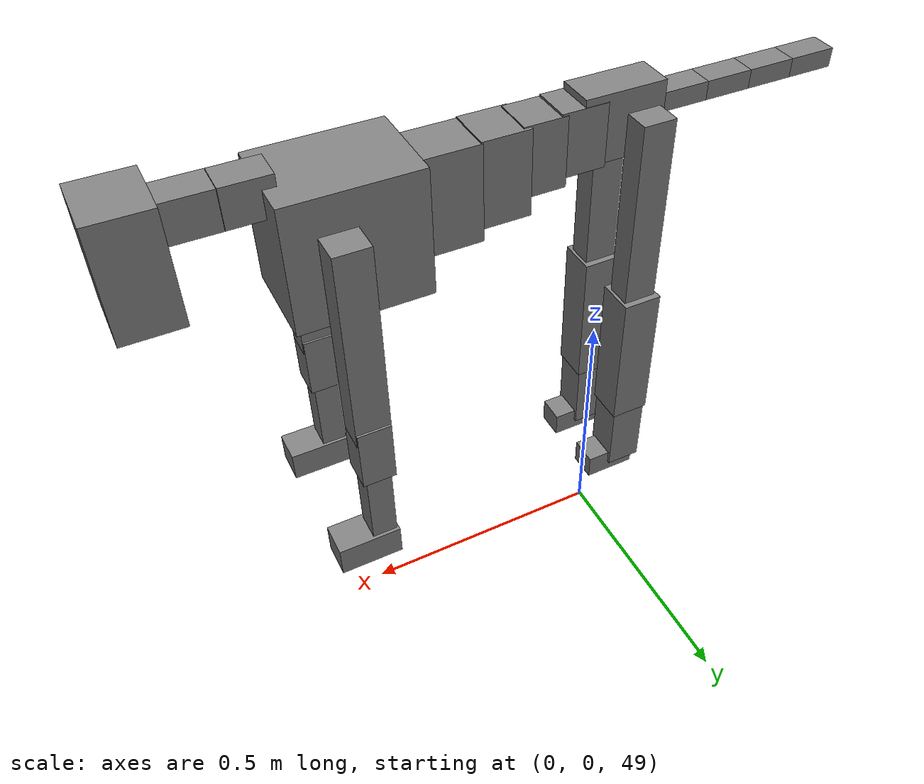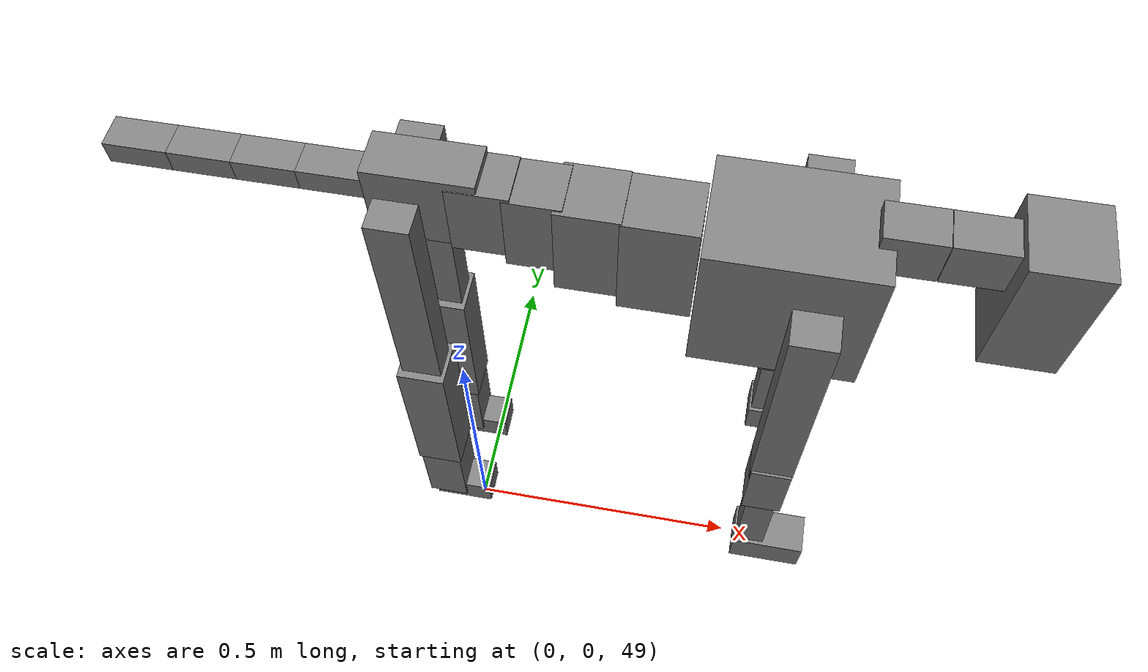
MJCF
<mujoco model="dog">

    <default>
        <joint armature="0.02" stiffness="1" damping="0.2" limited="true"/>
        <geom condim="3" friction="1 0.05 0.05" margin="0.01"/>
        <motor ctrllimited="true" ctrlrange="-1.0 1.0" forcelimited="true" gear="50"/>
    </default>

    <compiler inertiafromgeom="true" angle="radian"/>

    <option timestep="0.016" iterations="50" tolerance="1e-10" solver="Newton" jacobian="dense" cone="pyramidal"/>

    <size nconmax="20000" njmax="60000" nstack="5000000"/>
    <visual>
        <map force="0.1" zfar="30"/>
        <rgba haze="0.15 0.25 0.35 1"/>
        <quality shadowsize="2048"/>
        <global offwidth="800" offheight="800"/>
    </visual>

    <asset>
        <texture type="skybox" builtin="gradient" rgb1="0.3 0.5 0.7" rgb2="0 0 0" width="512" height="512"/>
        <texture name="texplane" type="2d" builtin="checker" rgb1=".2 .3 .4" rgb2=".1 0.15 0.2" width="512" height="512"
                 mark="cross" markrgb=".8 .8 .8"/>
        <texture name="texgeom" type="cube" builtin="flat" mark="cross" width="127" height="1278" rgb1="0.8 0.6 0.4"
                 rgb2="0.8 0.6 0.4" markrgb="1 1 1" random="0.01"/>

        <material name="matplane" reflectance="0.3" texture="texplane" texrepeat="1 1" texuniform="true"/>
        <material name="matgeom" texture="texgeom" texuniform="true" rgba="0.8 0.6 .4 1"/>
    </asset>

    <worldbody>
        <geom name="floor" pos="0 0 0" size="0 0 .25" type="plane" material="matplane" condim="3"/>

        <light directional="false" diffuse=".2 .2 .2" specular="0 0 0" pos="0 0 5" dir="0 0 -1" castshadow="false"/>
        <light mode="targetbodycom" target="torso" directional="false" diffuse=".8 .8 .8" specular="0.3 0.3 0.3"
               pos="0 0 4.0" dir="0 0 -1"/>

        <body name="root" pos="0 0 50">
            <freejoint name="root_1"/>
            <geom type="box" pos="0 0 -0.02" size="0.0774  0.0358  0.063" density="2030"/>

            <body name="spine1" pos="0.054 0 0">
                <joint name="spine1_y" axis="0 1 0" range="0 0.7" limited="true"/>
                <geom type="box" pos="0.02375 0 -0.03" size="0.04375  0.0375  0.05985" density="2030"/>

                <body name="spine2" pos="0.0612 0 0">
                    <joint name="spine2_y" axis="0 1 0" range="-0.15 0.15" limited="true"/>
                    <geom type="box" pos="0.03555  0  -0.04" size="0.04055  0.039  0.06615" density="2030"/>

                    <body name="spine3" pos="0.0730 0 0">
                        <joint name="spine3_y" axis="0 1 0" range="-0.15 0.15" limited="true"/>
                        <geom type="box" pos="0.03555  0  -0.057" size="0.04555  0.0445  0.081" density="2030"/>

                        <body name="spine4" pos="0.0780 0 0">
                            <joint name="spine4_y" axis="0 1 0" range="-0.15 0.15" limited="true"/>
                            <geom type="box" pos="0.05265  0  -0.07" size="0.05265  0.045  0.09135" density="2030"/>

                            <body name="torso" pos="0.1082 0 0">
                                <joint name="torso_y" axis="0 1 0" range="-0.15 0.15" limited="true"/>
                                <geom type="box" pos="0.11925  0  -0.085" size="0.11925  0.085  0.11745"
                                      density="2030"/>

                                <body name="neck1" pos="0.2160  0   0.0180">
                                    <joint name="neck1_y" axis="0 1 0" range="-1.2  -1" limited="true"/>
                                    <geom type="box" pos="0.0423  0  0" size="0.0423  0.03  0.036" density="2325"/>

                                    <body name="neck2" pos="0.0853  0  0">
                                        <joint name="neck2_y" axis="0 1 0" range="0.1  0" limited="true"/>
                                        <geom type="box" pos="0.0423  0  0" size="0.0423  0.03  0.036" density="2325"/>

                                        <body name="head" pos="0.0853  0  0">
                                            <joint name="head_y" axis="0 1 0" range="-0.3  -0.2" limited="true"/>
                                            <geom type="box" pos="0.0531  0  -0.055" size="0.0531  0.06  0.1044"
                                                  density="4030"/>

                                        </body>
                                    </body>
                                </body>

                                <body name="front_shoulder" pos="0.156  0   -0.0480">
                                    <joint name="front_shoulder_y" axis="0 1 0" range="-1 1.5" limited="true"/>
                                    <geom type="box" pos="0 0.13 -0.1683" size="0.0319  0.0273  0.1950" density="1158"/>
                                    <geom type="box" pos="0 -0.13 -0.1683" size="0.0319  0.0273  0.1950"
                                          density="1158"/>

                                    <body name="front_elbow" pos="0  0  -0.3366">
                                        <joint name="front_elbow_y" axis="0 1 0" range="-2 0" limited="true"/>
                                        <geom type="box" pos="0 0.13 -0.0614" size="0.0308  0.0315  0.0614"
                                              density="1081"/>
                                        <geom type="box" pos="0 -0.13 -0.0614" size="0.0308  0.0315  0.0614"
                                              density="1081"/>

                                        <body name="front_wrist" pos="0  0  -0.1228">
                                            <joint name="front_wrist_y" axis="0 1 0" range="-0.2 0" limited="true"/>
                                            <geom type="box" pos="0 0.13 -0.0819" size="0.0234  0.0260  0.0951"
                                                  density="1664"/>
                                            <geom type="box" pos="0 -0.13 -0.0819" size="0.0234  0.0260  0.0951"
                                                  density="1664"/>

                                            <body name="front_finger_end" pos="0  0  -0.1638">
                                                <joint name="front_finger_y" axis="0 1 0" range="-0.4 1"
                                                       limited="true"/>
                                                <geom type="box" pos="0.0323  0.13  -0.0156"
                                                      size="0.0593  0.0323  0.0306" density="1515"/>
                                                <geom type="box" pos="0.0323  -0.13  -0.0156"
                                                      size="0.0593  0.0323  0.0306" density="1515"/>

                                            </body>

                                        </body>
                                    </body>
                                </body>

                            </body>
                        </body>
                    </body>
                </body>
            </body>

            <body name="back_hip" pos="-0.03 0 -0.018">
                <joint name="back_hip_y" axis="0 1 0" range="-1.5 0.3" limited="true"/>
                <geom type="box" pos="0 0.07 -0.1784" size="0.0314  0.0247  0.2012" density="1154"/>
                <geom type="box" pos="0 -0.07 -0.1784" size="0.0314  0.0247  0.2012" density="1154"/>

                <body name="back_knee" pos="0  0  -0.3569">
                    <joint name="back_knee_y" axis="0 1 0" range="0 2.8" limited="true"/>
                    <geom type="box" pos="0 0.07 -0.1272" size="0.0376  0.0371  0.1428" density="1227"/>
                    <geom type="box" pos="0 -0.07 -0.1272" size="0.0376  0.0371  0.1428" density="1227"/>

                    <body name="back_ankle" pos="0  0  -0.2544">
                        <joint name="back_ankle_y" axis="0 1 0" range="-2.2 0" limited="true"/>
                        <geom type="box" pos="0 0.07 -0.0739" size="0.0343  0.0343  0.0852" density="1284"/>
                        <geom type="box" pos="0 -0.07 -0.0739" size="0.0343  0.0343  0.0852" density="1284"/>

                        <body name="back_toe_end" pos="0  0  -0.1479">
                            <joint name="back_toe_y" axis="0 1 0" range="-0.4 1" limited="true"/>
                            <geom type="box" pos="0.0279  0.07  -0.0099" size="0.0511  0.0279  0.0249" density="1515"/>
                            <geom type="box" pos="0.0279  -0.07  -0.0099" size="0.0511  0.0279  0.0249" density="1515"/>

                        </body>
                    </body>
                </body>
            </body>

            <body name="tail1" pos="-0.074 0 -0.006">
                <joint name="tail1_y" axis="0 1 0" range="-0.2 0.2" limited="true"/>
                <geom type="box" pos="-0.0536  0  0" size="0.045  0.025  0.0175" density="1587"/>

                <body name="tail2" pos="-0.09 0 0">
                    <joint name="tail2_y" axis="0 1 0" range="-0.2 0.2" limited="true"/>
                    <geom type="box" pos="-0.0536  0  0" size="0.045  0.025  0.0175" density="1587"/>

                    <body name="tail3" pos="-0.09 0 0">
                        <joint name="tail3_y" axis="0 1 0" range="-0.2 0.2" limited="true"/>
                        <geom type="box" pos="-0.0536  0  0" size="0.045  0.025  0.0175" density="1587"/>

                        <body name="tail4" pos="-0.09 0 0">
                            <joint name="tail4_y" axis="0 1 0" range="-0.2 0.2" limited="true"/>
                            <geom type="box" pos="-0.0536  0  0" size="0.045  0.025  0.0175" density="1587"/>

                        </body>
                    </body>
                </body>
            </body>
        </body>
    </worldbody>

    <actuator>
        <motor joint="spine1_y" forcerange="-150 150     "/>
        <motor joint="spine2_y" forcerange="-150 150     "/>
        <motor joint="spine3_y" forcerange="-150 150     "/>
        <motor joint="spine4_y" forcerange="-150 150     "/>
        <motor joint="torso_y" forcerange="-150 150     "/>
        <motor joint="neck1_y" forcerange="-100 100       "/>
        <motor joint="neck2_y" forcerange="-100 100       "/>
        <motor joint="head_y" forcerange="-150 150       "/>
        <motor joint="front_shoulder_y" forcerange="-156.22 125.61"/>
        <motor joint="front_elbow_y" forcerange="-182.81 146.33"/>
        <motor joint="front_wrist_y" forcerange="-122.02 85.79"/>
        <motor joint="front_finger_y" forcerange="-81.66 50.79"/>
        <motor joint="back_hip_y" forcerange="-230.81 298.05"/>
        <motor joint="back_knee_y" forcerange="-373.16 366.38"/>
        <motor joint="back_angle_y" forcerange="-200.40 248.81"/>
        <motor joint="back_toe_y" forcerange="-53.79 89.27"/>
        <motor joint="tail1_y" forcerange="-50 50     "/>
        <motor joint="tail2_y" forcerange="-50 50     "/>
        <motor joint="tail3_y" forcerange="-50 50     "/>
        <motor joint="tail4_y" forcerange="-50 50     "/>
    </actuator>
</mujoco>
